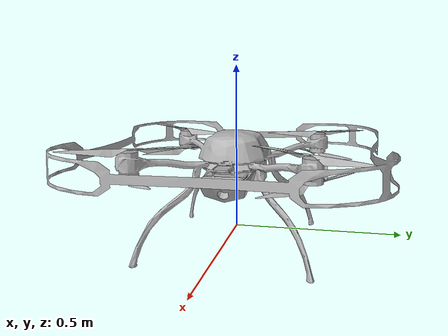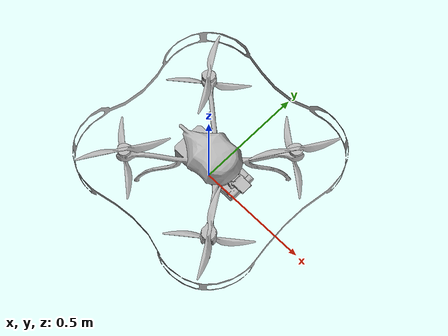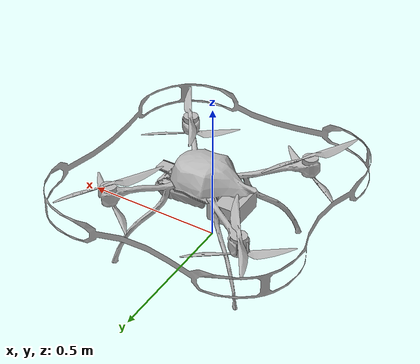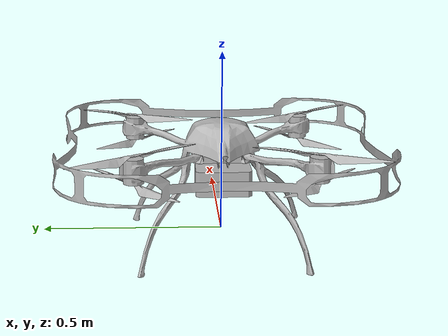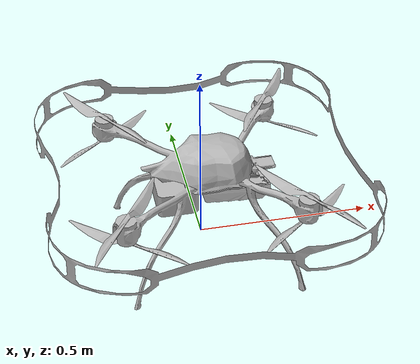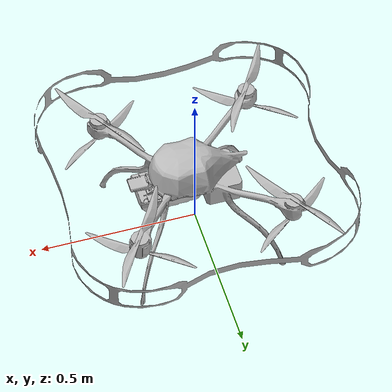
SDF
<?xml version='1.0' encoding='utf-8'?>
<sdf version="1.6">
    <!-- box based on model://emesent_hovermap/meshes/ST-LIDAR-hipoly.dae,
    that could not be loaded by Gazebo Garden as a mesh apparently: maybe too big? -->

    <model name="emesent_hovermap">
        <pose>0 0 0.2 0 0 0</pose>

        <link name="base_link">
            <pose>0 0 0 0 0 0</pose>

            <inertial>
                <pose>0 0 0 0 0 0</pose>
                <mass>5.281</mass>
                <inertia>
                    <ixx>0.105225</ixx>
                    <ixy>0</ixy>
                    <ixz>0</ixz>
                    <iyy>0.11353</iyy>
                    <iyz>0</iyz>
                    <izz>0.133861</izz>
                </inertia>
            </inertial>

            <collision name="base_link_fixed_joint_lump__body_collision">
                <pose>0.11 0 0 0 0 1.5708</pose>
                <geometry>
                    <!-- box based on model://emesent_hovermap/meshes/navi-drone-hipoly.dae,
                    that could not be loaded by Gazebo Garden as a mesh apparently: maybe too big?-->
                    <box>
                        <size>0.55 0.55 0.40</size>
                    </box>
                </geometry>
            </collision>
            <collision name="base_link_fixed_joint_lump__body_collision_1">
                <pose>0.11 0 0 0 0 1.5708</pose>
                <geometry>
                    <!-- box based on model://emesent_hovermap/meshes/navi-guard.dae,
                    that could not be loaded by Gazebo Garden as a mesh apparently: maybe too big? -->
                    <box>
                        <size>0.90 0.90 0.08</size>
                    </box>
                </geometry>
            </collision>
            <collision name="base_link_fixed_joint_lump__hovermap_base_collision_2">
                <pose>0.1195 0 -0.0115 0 0 1.5708</pose>
                <geometry>
                    <!-- box based on model://emesent_hovermap/meshes/ST-LIDAR-case-2.dae,
                    that could not be loaded by Gazebo Garden as a mesh apparently: maybe too big? -->
                    <box>
                        <size>0.90 0.13 0.05</size>
                    </box>
                </geometry>
            </collision>

            <visual name="base_link_fixed_joint_lump__body_visual">
                <pose>0.11 0 0 0 0 1.5708</pose>
                <geometry>
                    <mesh>
                        <scale>1 1 1</scale>
                        <uri>model://emesent_hovermap/meshes/navi-drone-hipoly-mount.dae</uri>
                    </mesh>
                </geometry>
            </visual>
            <visual name="base_link_fixed_joint_lump__body_visual_1">
                <pose>0.11 0 0 0 0 1.5708</pose>
                <geometry>
                    <mesh>
                        <scale>1 1 1</scale>
                        <uri>model://emesent_hovermap/meshes/navi-guard.dae</uri>
                    </mesh>
                </geometry>
            </visual>
            <visual name="base_link_fixed_joint_lump__hovermap_base_visual_2">
                <pose>0.1195 0 -0.0115 0 0 1.5708</pose>
                <geometry>
                    <mesh>
                        <scale>1 1 1</scale>
                        <uri>model://emesent_hovermap/meshes/ST-LIDAR-case-2.dae</uri>
                    </mesh>
                </geometry>
            </visual>

            <velocity_decay />
            <gravity>1</gravity>
            <velocity_decay />

            <sensor name="imu" type="imu">
                <always_on>1</always_on>
                <update_rate>100</update_rate>
                <imu>
                    <enable_orientation>0</enable_orientation>
                    <angular_velocity>
                        <x>
                            <noise type="gaussian">
                                <mean>0</mean>
                                <stddev>0.009</stddev>
                                <bias_mean>0.00075</bias_mean>
                                <bias_stddev>0.005</bias_stddev>
                                <dynamic_bias_stddev>0.00002</dynamic_bias_stddev>
                                <dynamic_bias_correlation_time>400.0</dynamic_bias_correlation_time>
                                <precision>0.00025</precision>
                            </noise>
                        </x>
                        <y>
                            <noise type="gaussian">
                                <mean>0</mean>
                                <stddev>0.009</stddev>
                                <bias_mean>0.00075</bias_mean>
                                <bias_stddev>0.005</bias_stddev>
                                <dynamic_bias_stddev>0.00002</dynamic_bias_stddev>
                                <dynamic_bias_correlation_time>400.0</dynamic_bias_correlation_time>
                                <precision>0.00025</precision>
                            </noise>
                        </y>
                        <z>
                            <noise type="gaussian">
                                <mean>0</mean>
                                <stddev>0.009</stddev>
                                <bias_mean>0.00075</bias_mean>
                                <bias_stddev>0.005</bias_stddev>
                                <dynamic_bias_stddev>0.00002</dynamic_bias_stddev>
                                <dynamic_bias_correlation_time>400.0</dynamic_bias_correlation_time>
                                <precision>0.00025</precision>
                            </noise>
                        </z>
                    </angular_velocity>
                    <linear_acceleration>
                        <x>
                            <noise type="gaussian">
                                <mean>0</mean>
                                <stddev>0.021</stddev>
                                <bias_mean>0.05</bias_mean>
                                <bias_stddev>0.0075</bias_stddev>
                                <dynamic_bias_stddev>0.000375</dynamic_bias_stddev>
                                <dynamic_bias_correlation_time>175.0</dynamic_bias_correlation_time>
                                <precision>0.005</precision>
                            </noise>
                        </x>
                        <y>
                            <noise type="gaussian">
                                <mean>0</mean>
                                <stddev>0.021</stddev>
                                <bias_mean>0.05</bias_mean>
                                <bias_stddev>0.0075</bias_stddev>
                                <dynamic_bias_stddev>0.000375</dynamic_bias_stddev>
                                <dynamic_bias_correlation_time>175.0</dynamic_bias_correlation_time>
                                <precision>0.005</precision>
                            </noise>
                        </y>
                        <z>
                            <noise type="gaussian">
                                <mean>0</mean>
                                <stddev>0.021</stddev>
                                <bias_mean>0.05</bias_mean>
                                <bias_stddev>0.0075</bias_stddev>
                                <dynamic_bias_stddev>0.000375</dynamic_bias_stddev>
                                <dynamic_bias_correlation_time>175.0</dynamic_bias_correlation_time>
                                <precision>0.005</precision>
                            </noise>
                        </z>
                    </linear_acceleration>
                </imu>
            </sensor>
            <sensor name="air_pressure" type="air_pressure">
                <always_on>1</always_on>
                <update_rate>20</update_rate>
                <air_pressure>
                    <reference_altitude>0</reference_altitude>
                    <pressure>
                        <noise type="gaussian">
                            <mean>0.00000008</mean>
                        </noise>
                    </pressure>
                </air_pressure>
            </sensor>

            <sensor name="imu_sensor" type="imu">
                <always_on>1</always_on>
                <update_rate>250</update_rate>
                <imu>
                    <enable_orientation>0</enable_orientation>
                    <angular_velocity>
                        <x>
                            <noise type="gaussian">
                                <mean>0</mean>
                                <stddev>0.009</stddev>
                                <bias_mean>0.00075</bias_mean>
                                <bias_stddev>0.005</bias_stddev>
                                <dynamic_bias_stddev>0.00002</dynamic_bias_stddev>
                                <dynamic_bias_correlation_time>400.0</dynamic_bias_correlation_time>
                                <precision>0.00025</precision>
                            </noise>
                        </x>
                        <y>
                            <noise type="gaussian">
                                <mean>0</mean>
                                <stddev>0.009</stddev>
                                <bias_mean>0.00075</bias_mean>
                                <bias_stddev>0.005</bias_stddev>
                                <dynamic_bias_stddev>0.00002</dynamic_bias_stddev>
                                <dynamic_bias_correlation_time>400.0</dynamic_bias_correlation_time>
                                <precision>0.00025</precision>
                            </noise>
                        </y>
                        <z>
                            <noise type="gaussian">
                                <mean>0</mean>
                                <stddev>0.009</stddev>
                                <bias_mean>0.00075</bias_mean>
                                <bias_stddev>0.005</bias_stddev>
                                <dynamic_bias_stddev>0.00002</dynamic_bias_stddev>
                                <dynamic_bias_correlation_time>400.0</dynamic_bias_correlation_time>
                                <precision>0.00025</precision>
                            </noise>
                        </z>
                    </angular_velocity>
                    <linear_acceleration>
                        <x>
                            <noise type="gaussian">
                                <mean>0</mean>
                                <stddev>0.021</stddev>
                                <bias_mean>0.05</bias_mean>
                                <bias_stddev>0.0075</bias_stddev>
                                <dynamic_bias_stddev>0.000375</dynamic_bias_stddev>
                                <dynamic_bias_correlation_time>175.0</dynamic_bias_correlation_time>
                                <precision>0.005</precision>
                            </noise>
                        </x>
                        <y>
                            <noise type="gaussian">
                                <mean>0</mean>
                                <stddev>0.021</stddev>
                                <bias_mean>0.05</bias_mean>
                                <bias_stddev>0.0075</bias_stddev>
                                <dynamic_bias_stddev>0.000375</dynamic_bias_stddev>
                                <dynamic_bias_correlation_time>175.0</dynamic_bias_correlation_time>
                                <precision>0.005</precision>
                            </noise>
                        </y>
                        <z>
                            <noise type="gaussian">
                                <mean>0</mean>
                                <stddev>0.021</stddev>
                                <bias_mean>0.05</bias_mean>
                                <bias_stddev>0.0075</bias_stddev>
                                <dynamic_bias_stddev>0.000375</dynamic_bias_stddev>
                                <dynamic_bias_correlation_time>175.0</dynamic_bias_correlation_time>
                                <precision>0.005</precision>
                            </noise>
                        </z>
                    </linear_acceleration>
                </imu>
            </sensor>
            <sensor name="air_pressure_sensor" type="air_pressure">
                <always_on>1</always_on>
                <update_rate>50</update_rate>
                <air_pressure>
                    <pressure>
                        <noise type="gaussian">
                            <mean>0</mean>
                            <stddev>0.01</stddev>
                        </noise>
                    </pressure>
                </air_pressure>
            </sensor>
        </link>

        <link name="rotor_0">
            <pose>0.24 -0.24 0.035 0 0 0</pose>

            <inertial>
                <pose>0 0 0 0 0 1.5708</pose>
                <mass>0.02</mass>
                <inertia>
                    <ixx>2.32667e-06</ixx>
                    <ixy>0</ixy>
                    <ixz>0</ixz>
                    <iyy>6.03333e-05</iyy>
                    <iyz>0</iyz>
                    <izz>6.23266e-05</izz>
                </inertia>
            </inertial>

            <collision name="rotor_0_collision_collision">
                <pose>0 0 0.04 0 0 1.01342</pose>
                <geometry>
                    <box>
                        <size>0.38 0.036 0.01</size>
                    </box>
                </geometry>
            </collision>
            <collision name="rotor_0_collision_collision_1">
                <pose>0 0 -0.0375 0 0 -0.604152</pose>
                <geometry>
                    <box>
                        <size>0.35492 0.036 0.01</size>
                    </box>
                </geometry>
            </collision>

            <visual name="rotor_0_visual_visual">
                <pose>0 0 0 0 0 0</pose>
                <geometry>
                    <mesh>
                        <scale>1 1 1</scale>
                        <uri>model://emesent_hovermap/meshes/navi-15in-CCW-tex.dae</uri>
                    </mesh>
                </geometry>
            </visual>
            <visual name="rotor_0_visual_visual_1">
                <pose>0 0 0 0 0 0</pose>
                <geometry>
                    <mesh>
                        <scale>1 1 1</scale>
                        <uri>model://emesent_hovermap/meshes/navi-14in-CCW-tex.dae</uri>
                    </mesh>
                </geometry>
            </visual>

            <gravity>1</gravity>
            <velocity_decay />
        </link>
        <joint name="rotor_0_joint" type="revolute">
            <child>rotor_0</child>
            <parent>base_link</parent>
            <axis>
                <xyz>0 0 1</xyz>
                <limit>
                    <lower>-1e+16</lower>
                    <upper>1e+16</upper>
                </limit>
                <dynamics>
                    <spring_reference>0</spring_reference>
                    <spring_stiffness>0</spring_stiffness>
                </dynamics>
                <use_parent_model_frame>1</use_parent_model_frame>
            </axis>
        </joint>
        <plugin filename="gz-sim-multicopter-motor-model-system"
            name="gz::sim::systems::MulticopterMotorModel">
            <jointName>rotor_0_joint</jointName>
            <linkName>rotor_0</linkName>
            <turningDirection>ccw</turningDirection>
            <timeConstantUp>0.0125</timeConstantUp>
            <timeConstantDown>0.025</timeConstantDown>
            <maxRotVelocity>1000.0</maxRotVelocity>
            <motorConstant>8.54858e-05</motorConstant>
            <momentConstant>0.016</momentConstant>
            <commandSubTopic>command/motor_speed</commandSubTopic>
            <motorNumber>0</motorNumber>
            <rotorDragCoefficient>8.06428e-05</rotorDragCoefficient>
            <rollingMomentCoefficient>1e-06</rollingMomentCoefficient>
            <rotorVelocitySlowdownSim>10</rotorVelocitySlowdownSim>
            <motorType>velocity</motorType>
        </plugin>

        <link name="rotor_1">
            <pose>-0.24 0.24 0.035 0 0 0</pose>

            <inertial>
                <pose>0 0 0 0 0 1.5708</pose>
                <mass>0.02</mass>
                <inertia>
                    <ixx>2.32667e-06</ixx>
                    <ixy>0</ixy>
                    <ixz>0</ixz>
                    <iyy>6.03333e-05</iyy>
                    <iyz>0</iyz>
                    <izz>6.23266e-05</izz>
                </inertia>
            </inertial>

            <collision name="rotor_1_collision_collision">
                <pose>0 0 0.04 0 0 1.01342</pose>
                <geometry>
                    <box>
                        <size>0.38 0.036 0.01</size>
                    </box>
                </geometry>
            </collision>
            <collision name="rotor_1_collision_collision_1">
                <pose>0 0 -0.0375 0 0 -0.604152</pose>
                <geometry>
                    <box>
                        <size>0.35492 0.036 0.01</size>
                    </box>
                </geometry>
            </collision>

            <visual name="rotor_1_visual_visual">
                <pose>0 0 0 0 0 0</pose>
                <geometry>
                    <mesh>
                        <scale>1 1 1</scale>
                        <uri>model://emesent_hovermap/meshes/navi-15in-CCW-tex.dae</uri>
                    </mesh>
                </geometry>
            </visual>
            <visual name="rotor_1_visual_visual_1">
                <pose>0 0 0 0 0 0</pose>
                <geometry>
                    <mesh>
                        <scale>1 1 1</scale>
                        <uri>model://emesent_hovermap/meshes/navi-14in-CCW-tex.dae</uri>
                    </mesh>
                </geometry>
            </visual>

            <gravity>1</gravity>
            <velocity_decay />
        </link>
        <joint name="rotor_1_joint" type="revolute">
            <child>rotor_1</child>
            <parent>base_link</parent>
            <axis>
                <xyz>0 0 1</xyz>
                <limit>
                    <lower>-1e+16</lower>
                    <upper>1e+16</upper>
                </limit>
                <dynamics>
                    <spring_reference>0</spring_reference>
                    <spring_stiffness>0</spring_stiffness>
                </dynamics>
                <use_parent_model_frame>1</use_parent_model_frame>
            </axis>
        </joint>
        <plugin filename="gz-sim-multicopter-motor-model-system"
            name="gz::sim::systems::MulticopterMotorModel">
            <jointName>rotor_1_joint</jointName>
            <linkName>rotor_1</linkName>
            <turningDirection>ccw</turningDirection>
            <timeConstantUp>0.0125</timeConstantUp>
            <timeConstantDown>0.025</timeConstantDown>
            <maxRotVelocity>1000.0</maxRotVelocity>
            <motorConstant>8.54858e-05</motorConstant>
            <momentConstant>0.016</momentConstant>
            <commandSubTopic>command/motor_speed</commandSubTopic>
            <motorNumber>1</motorNumber>
            <rotorDragCoefficient>8.06428e-05</rotorDragCoefficient>
            <rollingMomentCoefficient>1e-06</rollingMomentCoefficient>
            <rotorVelocitySlowdownSim>10</rotorVelocitySlowdownSim>
            <motorType>velocity</motorType>
        </plugin>

        <link name="rotor_2">
            <pose>0.24 0.24 0.035 0 0 0</pose>

            <inertial>
                <pose>0 0 0 0 0 1.5708</pose>
                <mass>0.02</mass>
                <inertia>
                    <ixx>2.32667e-06</ixx>
                    <ixy>0</ixy>
                    <ixz>0</ixz>
                    <iyy>6.03333e-05</iyy>
                    <iyz>0</iyz>
                    <izz>6.23266e-05</izz>
                </inertia>
            </inertial>

            <collision name="rotor_2_collision_collision">
                <pose>0 0 0.04 0 0 -1.01342</pose>
                <geometry>
                    <box>
                        <size>0.38 0.036 0.01</size>
                    </box>
                </geometry>
            </collision>
            <collision name="rotor_2_collision_collision_1">
                <pose>0 0 -0.0375 0 0 0.604152</pose>
                <geometry>
                    <box>
                        <size>0.35492 0.036 0.01</size>
                    </box>
                </geometry>
            </collision>

            <visual name="rotor_2_visual_visual">
                <pose>0 0 0 0 0 0</pose>
                <geometry>
                    <mesh>
                        <scale>1 1 1</scale>
                        <uri>model://emesent_hovermap/meshes/navi-15in-CW-tex.dae</uri>
                    </mesh>
                </geometry>
            </visual>
            <visual name="rotor_2_visual_visual_1">
                <pose>0 0 0 0 0 0</pose>
                <geometry>
                    <mesh>
                        <scale>1 1 1</scale>
                        <uri>model://emesent_hovermap/meshes/navi-14in-CW-tex.dae</uri>
                    </mesh>
                </geometry>
            </visual>

            <gravity>1</gravity>
            <velocity_decay />
        </link>
        <joint name="rotor_2_joint" type="revolute">
            <child>rotor_2</child>
            <parent>base_link</parent>
            <axis>
                <xyz>0 0 1</xyz>
                <limit>
                    <lower>-1e+16</lower>
                    <upper>1e+16</upper>
                </limit>
                <dynamics>
                    <spring_reference>0</spring_reference>
                    <spring_stiffness>0</spring_stiffness>
                </dynamics>
                <use_parent_model_frame>1</use_parent_model_frame>
            </axis>
        </joint>
        <plugin filename="gz-sim-multicopter-motor-model-system"
            name="gz::sim::systems::MulticopterMotorModel">
            <jointName>rotor_2_joint</jointName>
            <linkName>rotor_2</linkName>
            <turningDirection>cw</turningDirection>
            <timeConstantUp>0.0125</timeConstantUp>
            <timeConstantDown>0.025</timeConstantDown>
            <maxRotVelocity>1000.0</maxRotVelocity>
            <motorConstant>8.54858e-05</motorConstant>
            <momentConstant>0.016</momentConstant>
            <commandSubTopic>command/motor_speed</commandSubTopic>
            <motorNumber>2</motorNumber>
            <rotorDragCoefficient>8.06428e-05</rotorDragCoefficient>
            <rollingMomentCoefficient>1e-06</rollingMomentCoefficient>
            <rotorVelocitySlowdownSim>10</rotorVelocitySlowdownSim>
            <motorType>velocity</motorType>
        </plugin>

        <link name="rotor_3">
            <pose>-0.24 -0.24 0.035 0 0 0</pose>

            <inertial>
                <pose>0 0 0 0 0 1.5708</pose>
                <mass>0.02</mass>
                <inertia>
                    <ixx>2.32667e-06</ixx>
                    <ixy>0</ixy>
                    <ixz>0</ixz>
                    <iyy>6.03333e-05</iyy>
                    <iyz>0</iyz>
                    <izz>6.23266e-05</izz>
                </inertia>
            </inertial>

            <collision name="rotor_3_collision_collision">
                <pose>0 0 0.04 0 0 -1.01342</pose>
                <geometry>
                    <box>
                        <size>0.38 0.036 0.01</size>
                    </box>
                </geometry>
            </collision>
            <collision name="rotor_3_collision_collision_1">
                <pose>0 0 -0.0375 0 0 0.604152</pose>
                <geometry>
                    <box>
                        <size>0.35492 0.036 0.01</size>
                    </box>
                </geometry>
            </collision>

            <visual name="rotor_3_visual_visual">
                <pose>0 0 0 0 0 0</pose>
                <geometry>
                    <mesh>
                        <scale>1 1 1</scale>
                        <uri>model://emesent_hovermap/meshes/navi-15in-CW-tex.dae</uri>
                    </mesh>
                </geometry>
            </visual>
            <visual name="rotor_3_visual_visual_1">
                <pose>0 0 0 0 0 0</pose>
                <geometry>
                    <mesh>
                        <scale>1 1 1</scale>
                        <uri>model://emesent_hovermap/meshes/navi-14in-CW-tex.dae</uri>
                    </mesh>
                </geometry>
            </visual>

            <gravity>1</gravity>
            <velocity_decay />
        </link>
        <joint name="rotor_3_joint" type="revolute">
            <child>rotor_3</child>
            <parent>base_link</parent>
            <axis>
                <xyz>0 0 1</xyz>
                <limit>
                    <lower>-1e+16</lower>
                    <upper>1e+16</upper>
                </limit>
                <dynamics>
                    <spring_reference>0</spring_reference>
                    <spring_stiffness>0</spring_stiffness>
                </dynamics>
                <use_parent_model_frame>1</use_parent_model_frame>
            </axis>
        </joint>
        <plugin filename="gz-sim-multicopter-motor-model-system"
            name="gz::sim::systems::MulticopterMotorModel">
            <jointName>rotor_3_joint</jointName>
            <linkName>rotor_3</linkName>
            <turningDirection>cw</turningDirection>
            <timeConstantUp>0.0125</timeConstantUp>
            <timeConstantDown>0.025</timeConstantDown>
            <maxRotVelocity>1000.0</maxRotVelocity>
            <motorConstant>8.54858e-05</motorConstant>
            <momentConstant>0.016</momentConstant>
            <commandSubTopic>command/motor_speed</commandSubTopic>
            <motorNumber>3</motorNumber>
            <rotorDragCoefficient>8.06428e-05</rotorDragCoefficient>
            <rollingMomentCoefficient>1e-06</rollingMomentCoefficient>
            <rotorVelocitySlowdownSim>10</rotorVelocitySlowdownSim>
            <motorType>velocity</motorType>
        </plugin>

        <plugin filename="gz-sim-odometry-publisher-system"
            name="gz::sim::systems::OdometryPublisher">
            <dimensions>3</dimensions>
            <odom_frame>world</odom_frame>
        </plugin>

    </model>
</sdf>
